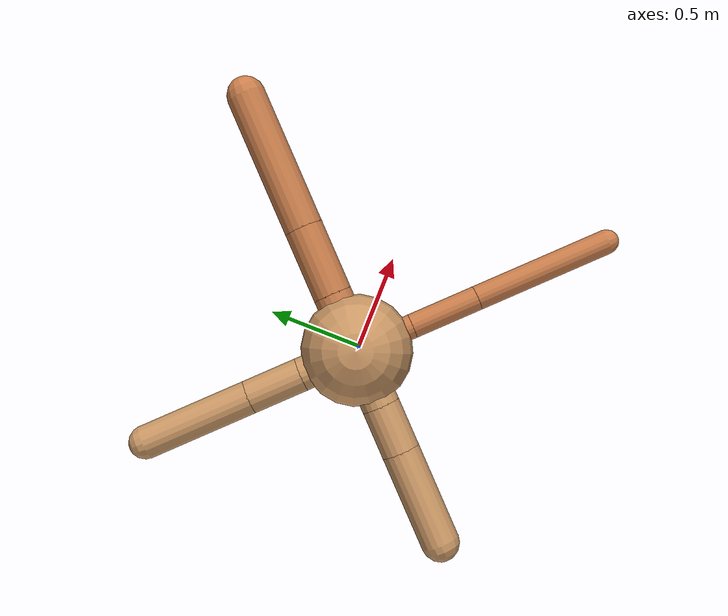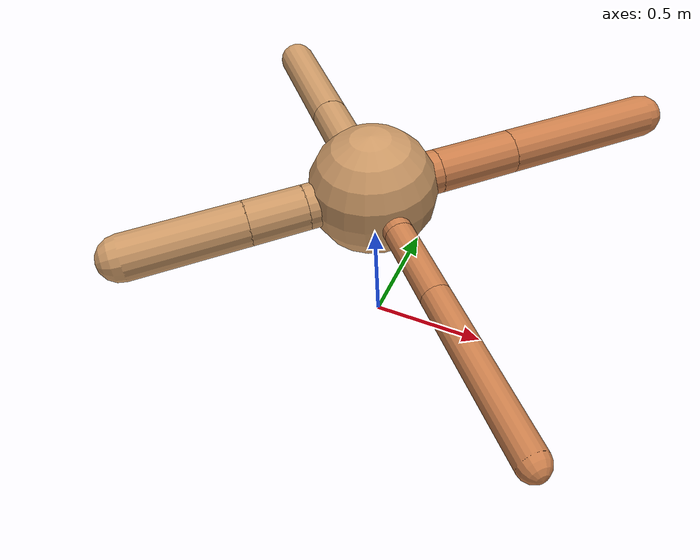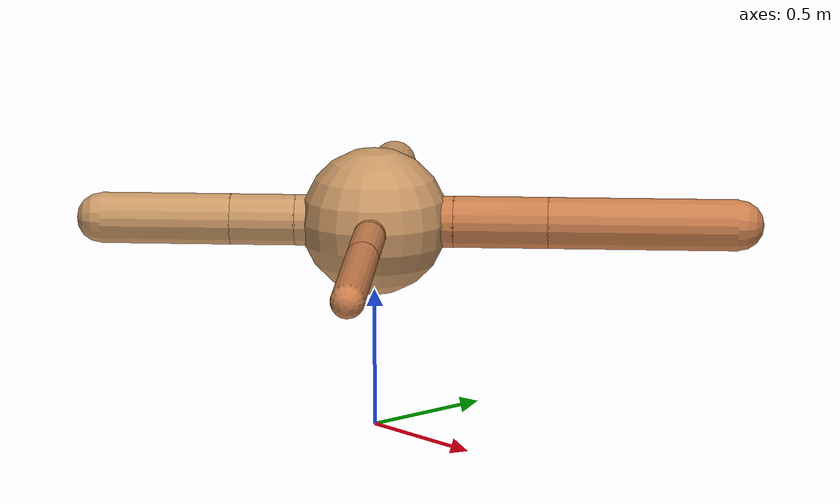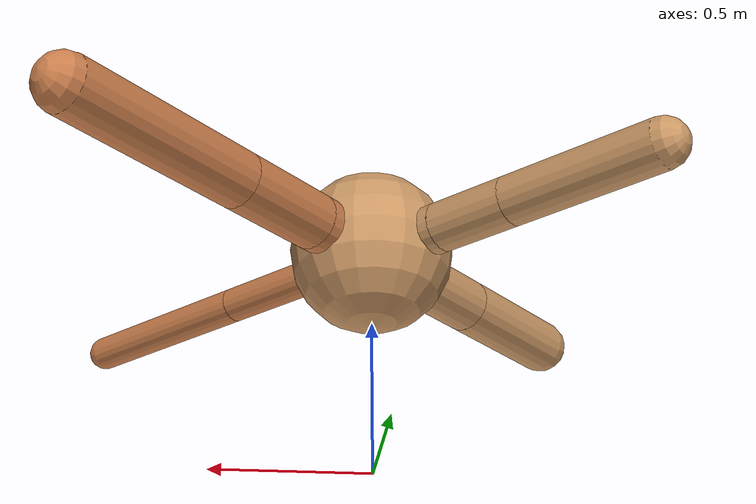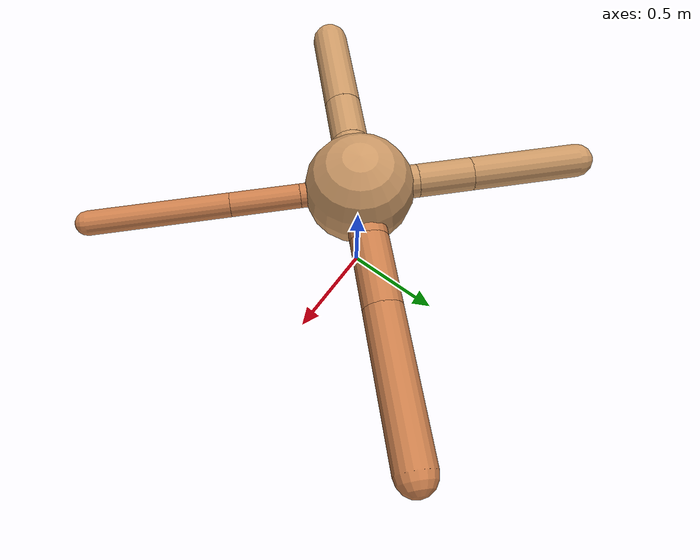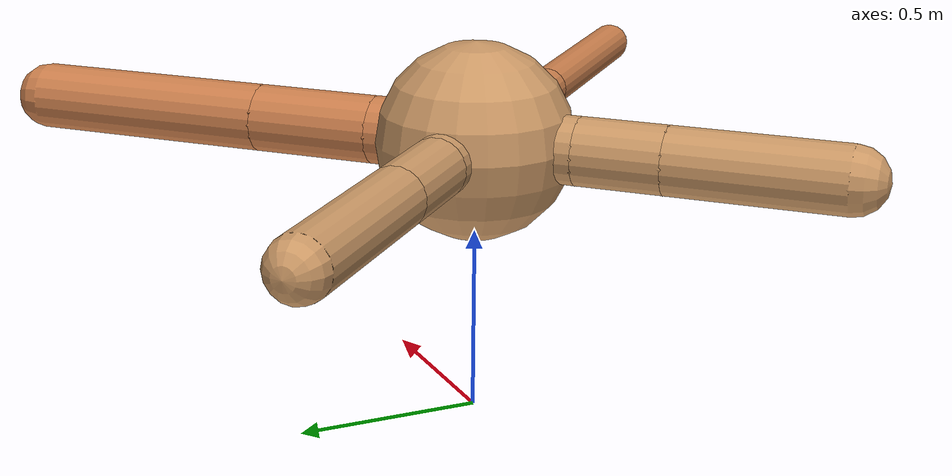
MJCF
<?xml version="1.0" ?>
<mujoco model="ant">

	<compiler angle="degree" coordinate="local" inertiafromgeom="true"/>

	<option integrator="RK4" timestep="0.01"/>

	<custom>

		<numeric data="0.0 0.0 0.55 1.0 0.0 0.0 0.0 0.0 1.0 0.0 -1.0 0.0 -1.0 0.0 1.0" name="init_qpos"/>

	</custom>

	<default>

		<joint armature="1" damping="1" limited="true"/>

		<geom conaffinity="0" condim="3" density="5.0" friction="1.5 0.1 0.1" margin="0.01" rgba="0.8 0.6 0.4 1"/>

	</default>

	<worldbody>

		<body name="torso" pos="0 0 0.75">

			<geom name="torso_geom" pos="0 0 0" size="0.2635444967969851" type="sphere"/>

			<!--joint armature="0" damping="0" limited="false" margin="0.01" name="root" pos="0 0 0" type="free"/-->

			<body name="front_left_leg" pos="0 0 0">

				<geom fromto="0 0 0 0.2 0.2 0" name="aux_1_geom" size="0.09195183407103125" type="capsule" rgba=".8 .5 .3 1"/>

				<body name="aux_1" pos="0.2 0.2 0">

					<joint axis="0 0 1" name="hip_1" pos="0.0 0.0 0.0" range="-40 40" type="hinge"/>

					<geom fromto="0 0 0 0.23894213588410143 0.23894213588410143 0" name="left_leg_geom" size="0.09195183407103125" type="capsule" rgba=".8 .5 .3 1"/>

					<body pos="0.23894213588410143 0.23894213588410143 0" name="front_left_foot">

						<joint axis="-1 1 0" name="ankle_1" pos="0.0 0.0 0.0" range="30 100" type="hinge"/>

						<geom fromto="0 0 0 0.47788427176820286 0.47788427176820286 0" name="left_ankle_geom" size="0.09195183407103125" type="capsule" rgba=".8 .5 .3 1"/>

					</body>

				</body>

			</body>

			<body name="front_right_leg" pos="0 0 0">

				<geom fromto="0 0 0 -0.2 0.2 0" name="aux_2_geom" size="0.08050491787409697" type="capsule"/>

				<body name="aux_2" pos="-0.2 0.2 0">

					<joint axis="0 0 1" name="hip_2" pos="0.0 0.0 0.0" range="-40 40" type="hinge"/>

					<geom fromto="0 0 0 -0.18633406024861587 0.18633406024861587 0" name="right_leg_geom" size="0.08050491787409697" type="capsule"/>

					<body pos="-0.18633406024861587 0.18633406024861587 0" name="front_right_foot">

						<joint axis="1 1 0" name="ankle_2" pos="0.0 0.0 0.0" range="-100 -30" type="hinge"/>

						<geom fromto="0 0 0 -0.37266812049723175 0.37266812049723175 0" name="right_ankle_geom" size="0.08050491787409697" type="capsule"/>

					</body>

				</body>

			</body>

			<body name="left_back_leg" pos="0 0 0">

				<geom fromto="0 0 0 -0.2 -0.2 0" name="aux_3_geom" size="0.09099132322593671" type="capsule"/>

				<body name="aux_3" pos="-0.2 -0.2 0">

					<joint axis="0 0 1" name="hip_3" pos="0.0 0.0 0.0" range="-40 40" type="hinge"/>

					<geom fromto="0 0 0 -0.16388652017353444 -0.16388652017353444 0" name="back_leg_geom" size="0.09099132322593671" type="capsule"/>

					<body pos="-0.16388652017353444 -0.16388652017353444 0" name="left_back_foot">

						<joint axis="-1 1 0" name="ankle_3" pos="0.0 0.0 0.0" range="-100 -30" type="hinge"/>

						<geom fromto="0 0 0 -0.3277730403470689 -0.3277730403470689 0" name="third_ankle_geom" size="0.09099132322593671" type="capsule"/>

					</body>

				</body>

			</body>

			<body name="right_back_leg" pos="0 0 0">

				<geom fromto="0 0 0 0.2 -0.2 0" name="aux_4_geom" size="0.058101661294657866" type="capsule" rgba=".8 .5 .3 1"/>

				<body name="aux_4" pos="0.2 -0.2 0">

					<joint axis="0 0 1" name="hip_4" pos="0.0 0.0 0.0" range="-40 40" type="hinge"/>

					<geom fromto="0 0 0 0.23265459949298944 -0.23265459949298944 0" name="rightback_leg_geom" size="0.058101661294657866" type="capsule" rgba=".8 .5 .3 1"/>

					<body pos="0.23265459949298944 -0.23265459949298944 0" name="right_back_foot">

						<joint axis="1 1 0" name="ankle_4" pos="0.0 0.0 0.0" range="30 100" type="hinge"/>

						<geom fromto="0 0 0 0.4653091989859789 -0.4653091989859789 0" name="fourth_ankle_geom" size="0.058101661294657866" type="capsule" rgba=".8 .5 .3 1"/>

					</body>

				</body>

			</body>

		</body>

	</worldbody>

	<actuator>

		<motor ctrllimited="true" ctrlrange="-1.0 1.0" joint="hip_4" gear="150"/>

		<motor ctrllimited="true" ctrlrange="-1.0 1.0" joint="ankle_4" gear="150"/>

		<motor ctrllimited="true" ctrlrange="-1.0 1.0" joint="hip_1" gear="150"/>

		<motor ctrllimited="true" ctrlrange="-1.0 1.0" joint="ankle_1" gear="150"/>

		<motor ctrllimited="true" ctrlrange="-1.0 1.0" joint="hip_2" gear="150"/>

		<motor ctrllimited="true" ctrlrange="-1.0 1.0" joint="ankle_2" gear="150"/>

		<motor ctrllimited="true" ctrlrange="-1.0 1.0" joint="hip_3" gear="150"/>

		<motor ctrllimited="true" ctrlrange="-1.0 1.0" joint="ankle_3" gear="150"/>

	</actuator>

</mujoco>
